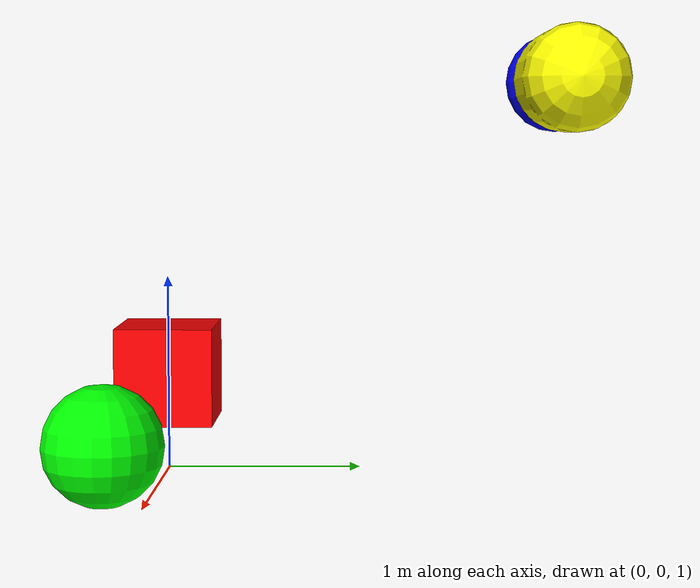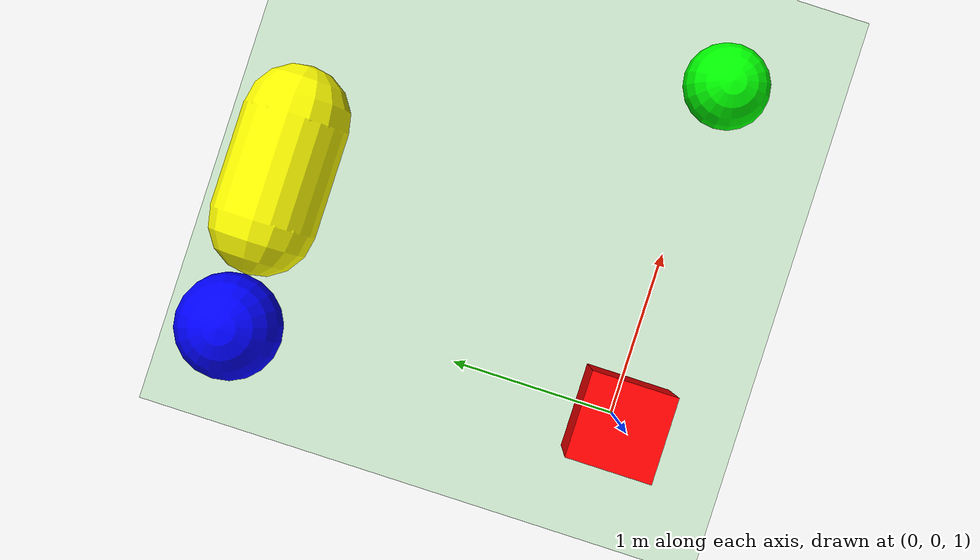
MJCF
<mujoco>
  <include file="./common/materials.xml"/>
  <option timestep="0.01"/>
  <worldbody>
    <light name="light" pos="0 0 3" directional = "true"/>
    <camera name="fixed" pos="0 -3 3" xyaxes="1 0 0 0 1 1"/>
    <geom name="floor" type="plane" size="5 5 0.1" pos="0 0 0" rgba="0.8 0.9 0.8 1" material="motphys-ground"/>

    <body name="free_cube" pos="0 0 1.5">
        <freejoint/>
        <geom name="cube" type="box" size="0.25 0.25 0.25" pos="0 0 0" rgba="1 0 0 1"/>
    </body>

    <body name="sphere" pos="2 0 1.5">
        <geom name="shpere" type="sphere" size="0.25" pos="0 0 0" rgba="0 1 0 1"/>
    </body>

    <body name="capsule" pos="0 2 3">
        <joint type="hinge" axis="0 1 0"/>
        <geom  type="sphere" size="0.25" rgba="0 0 1 1"/>
        <body pos="0.75 0 0" euler="0 90 0">
            <joint type="hinge" axis="1 0 0" />
            <geom  type="capsule" size="0.25 0.25"  rgba="1 1 0 1"/>
        </body>
    </body>

  </worldbody>
</mujoco>

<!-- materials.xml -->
<!--
Common textures, colors and materials to be used throughout this suite. Some
materials such as xxx_highlight are activated on occurence of certain events,
for example receiving a positive reward.
-->
<mujoco>
  <asset>
    <texture name="motphys-ground" type="2d" file="motphys-ground.png" />
    <material name="motphys-ground" texture="motphys-ground" texuniform="true"
      texrepeat="0.4 0.4" />
  </asset>
</mujoco>
